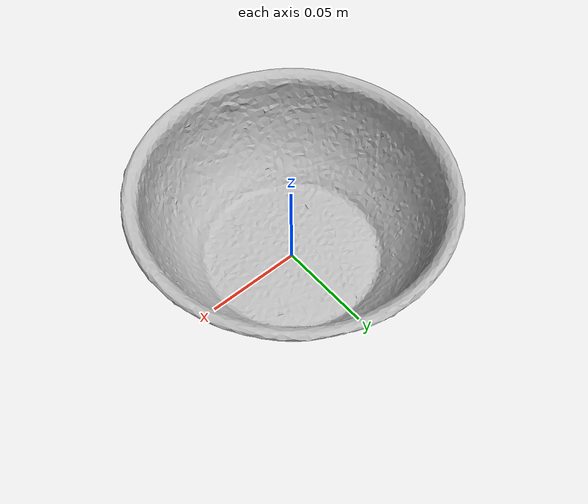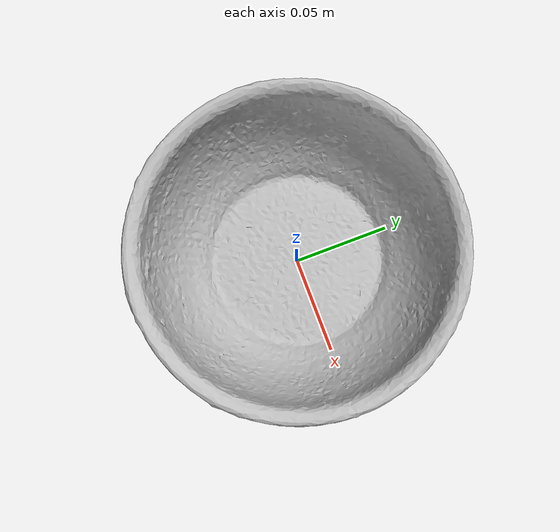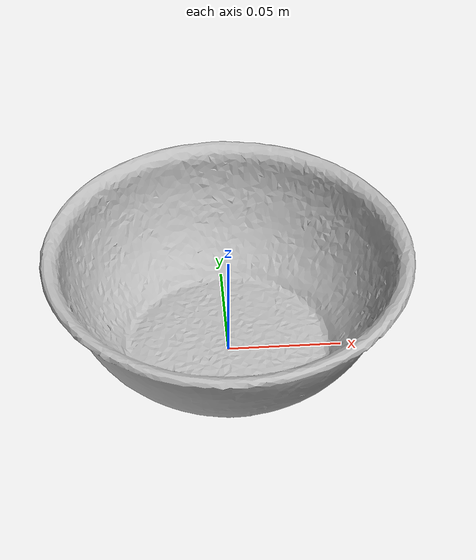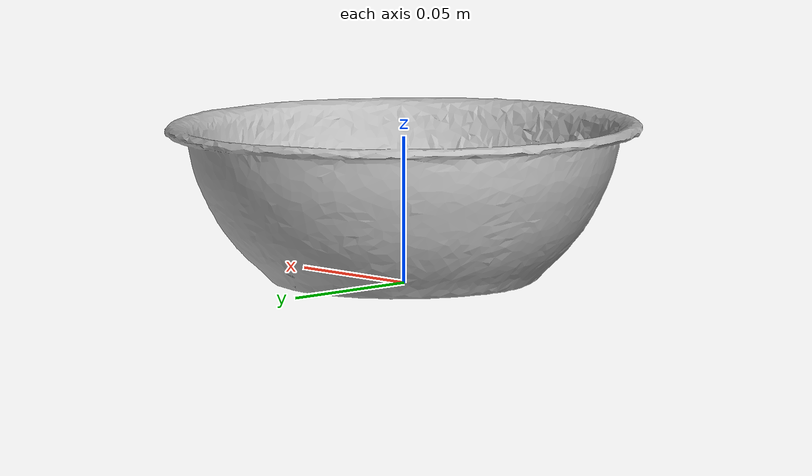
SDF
<?xml version="1.0"?>
<sdf version="1.6">
  <model name="bowl">
    <link name="link">
      <inertial>
        <!--
          保留资源原有质量。惯性按视觉网格的轴对称包络近似计算：
          半径 0.08066 m、高度 0.05501 m，质心位于高度中点。
          这里不用低面数 collision 网格直接积分，因为其不对称离散会
          产生约 20 mm 的虚假横向质心偏移，不符合碗的轴对称外形。
        -->
        <mass>1.131</mass>
        <inertia>
          <ixx>0.002124632</ixx>
          <ixy>0.0</ixy>
          <ixz>0.0</ixz>
          <iyy>0.002124632</iyy>
          <iyz>0.0</iyz>
          <izz>0.003678865</izz>
        </inertia>
        <pose>0 0 0.0275045 0 0 0</pose>
      </inertial>
      <collision name="collision">
        <pose>0 0 0 0 0 0</pose>
        <geometry>
          <mesh>
            <uri>model://bowl/meshes/collision.dae</uri>
          </mesh>
        </geometry>
      </collision>
      <visual name="visual">
        <pose>0 0 0 0 0 0</pose>
        <geometry>
          <mesh>
            <uri>model://bowl/meshes/textured.dae</uri>
          </mesh>
        </geometry>
      </visual>
    </link>
  </model>
</sdf>
